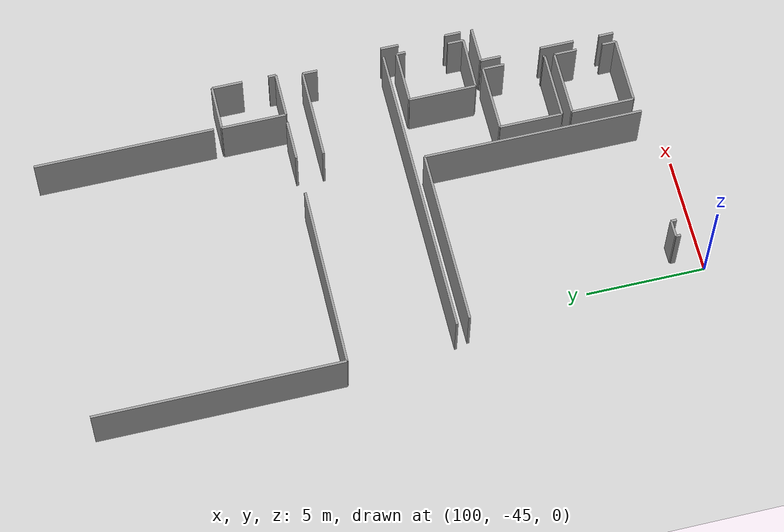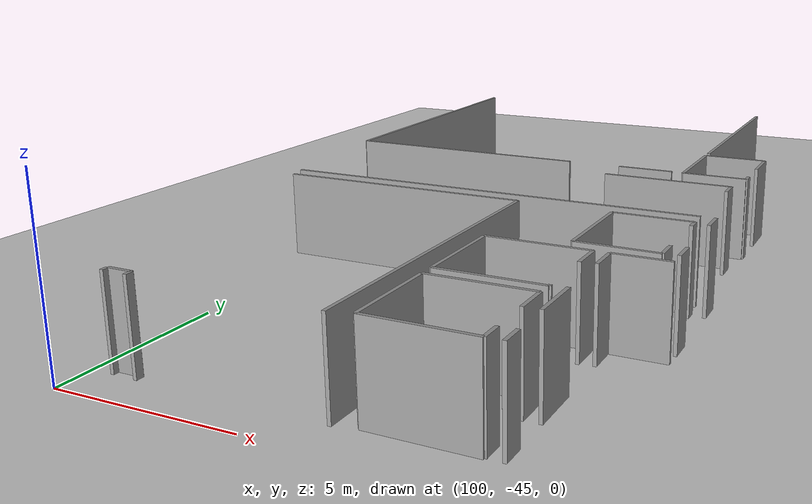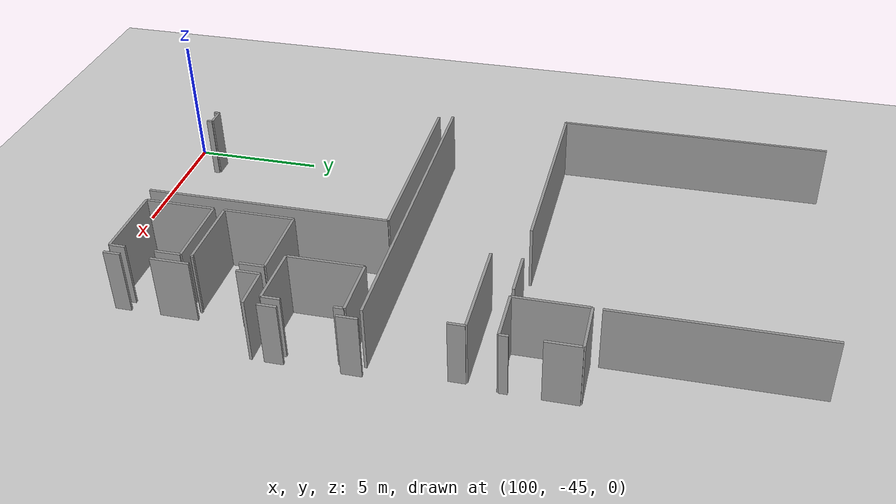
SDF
<sdf version="1.6">
 <world name="default">
  <model name="ground_plane">
   <static>1</static>
   <link name="link">
    <collision name="collision">
     <geometry><plane><normal>0 0 1</normal><size>100 100</size></plane></geometry>
     <surface><friction><ode><mu>100</mu><mu2>50</mu2></ode></friction></surface>
    </collision>
    <visual name="visual">
     <cast_shadows>0</cast_shadows>
     <geometry><plane><normal>0 0 1</normal><size>100 100</size></plane></geometry>
     <material>
      <script><uri>file://media/materials/scripts/gazebo.material</uri><name>Gazebo/Grey</name></script>
     </material>
    </visual>
   </link>
  </model>
  <model name="50015847">
   <static>1</static>
   <link name="Wall_886">
    <collision name="Wall_886_Collision">
     <geometry><box><size>2.71215742106 0.1 2.5</size></box></geometry>
     <pose>1.35607871053 0 1.25 0 0 0</pose>
    </collision>
    <visual name="Wall_886_Visual">
     <pose>1.35607871053 0 1.25 0 0 0</pose>
     <geometry><box><size>2.71215742106 0.1 2.5</size></box></geometry>
     <material>
      <script><uri>file://media/materials/scripts/gazebo.material</uri><name>Gazebo/Grey</name></script>
      <ambient>1 1 1 1</ambient>
     </material>
    </visual>
    <pose>242.059287131 -73.5165505669 0 0 0 1.57079632679</pose>
   </link>
   <link name="Wall_887">
    <collision name="Wall_887_Collision">
     <geometry><box><size>1.91945899222 0.1 2.5</size></box></geometry>
     <pose>0.95972949611 0 1.25 0 0 0</pose>
    </collision>
    <visual name="Wall_887_Visual">
     <pose>0.95972949611 0 1.25 0 0 0</pose>
     <geometry><box><size>1.91945899222 0.1 2.5</size></box></geometry>
     <material>
      <script><uri>file://media/materials/scripts/gazebo.material</uri><name>Gazebo/Grey</name></script>
      <ambient>1 1 1 1</ambient>
     </material>
    </visual>
    <pose>242.059287131 -70.8043931459 0 0 0 0.0</pose>
   </link>
   <link name="Wall_888">
    <collision name="Wall_888_Collision">
     <geometry><box><size>1.27574108913 0.1 2.5</size></box></geometry>
     <pose>0.637870544567 0 1.25 0 0 0</pose>
    </collision>
    <visual name="Wall_888_Visual">
     <pose>0.637870544567 0 1.25 0 0 0</pose>
     <geometry><box><size>1.27574108913 0.1 2.5</size></box></geometry>
     <material>
      <script><uri>file://media/materials/scripts/gazebo.material</uri><name>Gazebo/Grey</name></script>
      <ambient>1 1 1 1</ambient>
     </material>
    </visual>
    <pose>243.978746123 -70.8043931459 0 0 0 -1.57079632679</pose>
   </link>
   <link name="Wall_889">
    <collision name="Wall_889_Collision">
     <geometry><box><size>0.318045456857 0.1 2.5</size></box></geometry>
     <pose>0.159022728428 0 1.25 0 0 0</pose>
    </collision>
    <visual name="Wall_889_Visual">
     <pose>0.159022728428 0 1.25 0 0 0</pose>
     <geometry><box><size>0.318045456857 0.1 2.5</size></box></geometry>
     <material>
      <script><uri>file://media/materials/scripts/gazebo.material</uri><name>Gazebo/Grey</name></script>
      <ambient>1 1 1 1</ambient>
     </material>
    </visual>
    <pose>243.978746123 -73.1934204505 0 0 0 -1.57079632679</pose>
   </link>
   <link name="Wall_890">
    <collision name="Wall_890_Collision">
     <geometry><box><size>1.91946572686 0.1 2.5</size></box></geometry>
     <pose>0.959732863429 0 1.25 0 0 0</pose>
    </collision>
    <visual name="Wall_890_Visual">
     <pose>0.959732863429 0 1.25 0 0 0</pose>
     <geometry><box><size>1.91946572686 0.1 2.5</size></box></geometry>
     <material>
      <script><uri>file://media/materials/scripts/gazebo.material</uri><name>Gazebo/Grey</name></script>
      <ambient>1 1 1 1</ambient>
     </material>
    </visual>
    <pose>243.978746123 -73.5114659074 0 0 0 -3.13894365316</pose>
   </link>
   <link name="Wall_891">
    <collision name="Wall_891_Collision">
     <geometry><box><size>7.52961814207 0.1 2.5</size></box></geometry>
     <pose>3.76480907103 0 1.25 0 0 0</pose>
    </collision>
    <visual name="Wall_891_Visual">
     <pose>3.76480907103 0 1.25 0 0 0</pose>
     <geometry><box><size>7.52961814207 0.1 2.5</size></box></geometry>
     <material>
      <script><uri>file://media/materials/scripts/gazebo.material</uri><name>Gazebo/Grey</name></script>
      <ambient>1 1 1 1</ambient>
     </material>
    </visual>
    <pose>242.07199878 -70.4713479433 0 0 0 1.57079632679</pose>
   </link>
   <link name="Wall_935">
    <collision name="Wall_935_Collision">
     <geometry><box><size>10.3343163675 0.1 2.5</size></box></geometry>
     <pose>5.16715818376 0 1.25 0 0 0</pose>
    </collision>
    <visual name="Wall_935_Visual">
     <pose>5.16715818376 0 1.25 0 0 0</pose>
     <geometry><box><size>10.3343163675 0.1 2.5</size></box></geometry>
     <material>
      <script><uri>file://media/materials/scripts/gazebo.material</uri><name>Gazebo/Grey</name></script>
      <ambient>1 1 1 1</ambient>
     </material>
    </visual>
    <pose>230.682361316 -73.4453653328 0 0 0 1.57079632679</pose>
   </link>
   <link name="Wall_943">
    <collision name="Wall_943_Collision">
     <geometry><box><size>1.70336095998 0.1 2.5</size></box></geometry>
     <pose>0.851680479992 0 1.25 0 0 0</pose>
    </collision>
    <visual name="Wall_943_Visual">
     <pose>0.851680479992 0 1.25 0 0 0</pose>
     <geometry><box><size>1.70336095998 0.1 2.5</size></box></geometry>
     <material>
      <script><uri>file://media/materials/scripts/gazebo.material</uri><name>Gazebo/Grey</name></script>
      <ambient>1 1 1 1</ambient>
     </material>
    </visual>
    <pose>241.693191641 -73.4903645701 0 0 0 3.14159265359</pose>
   </link>
   <link name="Wall_944">
    <collision name="Wall_944_Collision">
     <geometry><box><size>7.6601718342 0.1 2.5</size></box></geometry>
     <pose>3.8300859171 0 1.25 0 0 0</pose>
    </collision>
    <visual name="Wall_944_Visual">
     <pose>3.8300859171 0 1.25 0 0 0</pose>
     <geometry><box><size>7.6601718342 0.1 2.5</size></box></geometry>
     <material>
      <script><uri>file://media/materials/scripts/gazebo.material</uri><name>Gazebo/Grey</name></script>
      <ambient>1 1 1 1</ambient>
     </material>
    </visual>
    <pose>238.342400976 -73.4903645701 0 0 0 3.13571817752</pose>
   </link>
   <link name="Wall_1495">
    <collision name="Wall_1495_Collision">
     <geometry><box><size>7.46428026644 0.1 2.5</size></box></geometry>
     <pose>3.73214013322 0 1.25 0 0 0</pose>
    </collision>
    <visual name="Wall_1495_Visual">
     <pose>3.73214013322 0 1.25 0 0 0</pose>
     <geometry><box><size>7.46428026644 0.1 2.5</size></box></geometry>
     <material>
      <script><uri>file://media/materials/scripts/gazebo.material</uri><name>Gazebo/Grey</name></script>
      <ambient>1 1 1 1</ambient>
     </material>
    </visual>
    <pose>231.3637057 -78.6263792139 0 0 0 0.0</pose>
   </link>
   <link name="Wall_1496">
    <collision name="Wall_1496_Collision">
     <geometry><box><size>9.22713174353 0.1 2.5</size></box></geometry>
     <pose>4.61356587176 0 1.25 0 0 0</pose>
    </collision>
    <visual name="Wall_1496_Visual">
     <pose>4.61356587176 0 1.25 0 0 0</pose>
     <geometry><box><size>9.22713174353 0.1 2.5</size></box></geometry>
     <material>
      <script><uri>file://media/materials/scripts/gazebo.material</uri><name>Gazebo/Grey</name></script>
      <ambient>1 1 1 1</ambient>
     </material>
    </visual>
    <pose>238.827985966 -78.6263792139 0 0 0 -1.57079632679</pose>
   </link>
   <link name="Wall_1497">
    <collision name="Wall_1497_Collision">
     <geometry><box><size>0.224487720547 0.1 2.5</size></box></geometry>
     <pose>0.112243860274 0 1.25 0 0 0</pose>
    </collision>
    <visual name="Wall_1497_Visual">
     <pose>0.112243860274 0 1.25 0 0 0</pose>
     <geometry><box><size>0.224487720547 0.1 2.5</size></box></geometry>
     <material>
      <script><uri>file://media/materials/scripts/gazebo.material</uri><name>Gazebo/Grey</name></script>
      <ambient>1 1 1 1</ambient>
     </material>
    </visual>
    <pose>233.651802512 -87.8535109574 0 0 0 1.57079632679</pose>
   </link>
   <link name="Wall_1498">
    <collision name="Wall_1498_Collision">
     <geometry><box><size>0.694056032949 0.1 2.5</size></box></geometry>
     <pose>0.347028016474 0 1.25 0 0 0</pose>
    </collision>
    <visual name="Wall_1498_Visual">
     <pose>0.347028016474 0 1.25 0 0 0</pose>
     <geometry><box><size>0.694056032949 0.1 2.5</size></box></geometry>
     <material>
      <script><uri>file://media/materials/scripts/gazebo.material</uri><name>Gazebo/Grey</name></script>
      <ambient>1 1 1 1</ambient>
     </material>
    </visual>
    <pose>233.651802512 -87.6290232369 0 0 0 3.14159265359</pose>
   </link>
   <link name="Wall_1499">
    <collision name="Wall_1499_Collision">
     <geometry><box><size>0.202115218386 0.1 2.5</size></box></geometry>
     <pose>0.101057609193 0 1.25 0 0 0</pose>
    </collision>
    <visual name="Wall_1499_Visual">
     <pose>0.101057609193 0 1.25 0 0 0</pose>
     <geometry><box><size>0.202115218386 0.1 2.5</size></box></geometry>
     <material>
      <script><uri>file://media/materials/scripts/gazebo.material</uri><name>Gazebo/Grey</name></script>
      <ambient>1 1 1 1</ambient>
     </material>
    </visual>
    <pose>232.957746479 -87.6290232369 0 0 0 -1.57079632679</pose>
   </link>
   <link name="Wall_1504">
    <collision name="Wall_1504_Collision">
     <geometry><box><size>0.688462907408 0.1 2.5</size></box></geometry>
     <pose>0.344231453704 0 1.25 0 0 0</pose>
    </collision>
    <visual name="Wall_1504_Visual">
     <pose>0.344231453704 0 1.25 0 0 0</pose>
     <geometry><box><size>0.688462907408 0.1 2.5</size></box></geometry>
     <material>
      <script><uri>file://media/materials/scripts/gazebo.material</uri><name>Gazebo/Grey</name></script>
      <ambient>1 1 1 1</ambient>
     </material>
    </visual>
    <pose>244.194844155 -81.4936187522 0 0 0 1.57079632679</pose>
   </link>
   <link name="Wall_1505">
    <collision name="Wall_1505_Collision">
     <geometry><box><size>0.748716123456 0.1 2.5</size></box></geometry>
     <pose>0.374358061728 0 1.25 0 0 0</pose>
    </collision>
    <visual name="Wall_1505_Visual">
     <pose>0.374358061728 0 1.25 0 0 0</pose>
     <geometry><box><size>0.748716123456 0.1 2.5</size></box></geometry>
     <material>
      <script><uri>file://media/materials/scripts/gazebo.material</uri><name>Gazebo/Grey</name></script>
      <ambient>1 1 1 1</ambient>
     </material>
    </visual>
    <pose>244.194844155 -78.8051049982 0 0 0 1.57079632679</pose>
   </link>
   <link name="Wall_1510">
    <collision name="Wall_1510_Collision">
     <geometry><box><size>2.8308842223 0.1 2.5</size></box></geometry>
     <pose>1.41544211115 0 1.25 0 0 0</pose>
    </collision>
    <visual name="Wall_1510_Visual">
     <pose>1.41544211115 0 1.25 0 0 0</pose>
     <geometry><box><size>2.8308842223 0.1 2.5</size></box></geometry>
     <material>
      <script><uri>file://media/materials/scripts/gazebo.material</uri><name>Gazebo/Grey</name></script>
      <ambient>1 1 1 1</ambient>
     </material>
    </visual>
    <pose>241.563532821 -81.4750597448 0 0 0 1.57079632679</pose>
   </link>
   <link name="Wall_1511">
    <collision name="Wall_1511_Collision">
     <geometry><box><size>2.23216555652 0.1 2.5</size></box></geometry>
     <pose>1.11608277826 0 1.25 0 0 0</pose>
    </collision>
    <visual name="Wall_1511_Visual">
     <pose>1.11608277826 0 1.25 0 0 0</pose>
     <geometry><box><size>2.23216555652 0.1 2.5</size></box></geometry>
     <material>
      <script><uri>file://media/materials/scripts/gazebo.material</uri><name>Gazebo/Grey</name></script>
      <ambient>1 1 1 1</ambient>
     </material>
    </visual>
    <pose>241.563532821 -78.6441755224 0 0 0 0.0</pose>
   </link>
   <link name="Wall_1512">
    <collision name="Wall_1512_Collision">
     <geometry><box><size>0.365587023949 0.1 2.5</size></box></geometry>
     <pose>0.182793511974 0 1.25 0 0 0</pose>
    </collision>
    <visual name="Wall_1512_Visual">
     <pose>0.182793511974 0 1.25 0 0 0</pose>
     <geometry><box><size>0.365587023949 0.1 2.5</size></box></geometry>
     <material>
      <script><uri>file://media/materials/scripts/gazebo.material</uri><name>Gazebo/Grey</name></script>
      <ambient>1 1 1 1</ambient>
     </material>
    </visual>
    <pose>243.795698378 -78.6441755224 0 0 0 -1.57079632679</pose>
   </link>
   <link name="Wall_1513">
    <collision name="Wall_1513_Collision">
     <geometry><box><size>0.673208928662 0.1 2.5</size></box></geometry>
     <pose>0.336604464331 0 1.25 0 0 0</pose>
    </collision>
    <visual name="Wall_1513_Visual">
     <pose>0.336604464331 0 1.25 0 0 0</pose>
     <geometry><box><size>0.673208928662 0.1 2.5</size></box></geometry>
     <material>
      <script><uri>file://media/materials/scripts/gazebo.material</uri><name>Gazebo/Grey</name></script>
      <ambient>1 1 1 1</ambient>
     </material>
    </visual>
    <pose>243.795698378 -80.8382061321 0 0 0 -1.57079632679</pose>
   </link>
   <link name="Wall_1514">
    <collision name="Wall_1514_Collision">
     <geometry><box><size>2.23246159669 0.1 2.5</size></box></geometry>
     <pose>1.11623079835 0 1.25 0 0 0</pose>
    </collision>
    <visual name="Wall_1514_Visual">
     <pose>1.11623079835 0 1.25 0 0 0</pose>
     <geometry><box><size>2.23246159669 0.1 2.5</size></box></geometry>
     <material>
      <script><uri>file://media/materials/scripts/gazebo.material</uri><name>Gazebo/Grey</name></script>
      <ambient>1 1 1 1</ambient>
     </material>
    </visual>
    <pose>243.795698378 -81.5114150608 0 0 0 3.12530707755</pose>
   </link>
   <link name="Wall_1515">
    <collision name="Wall_1515_Collision">
     <geometry><box><size>0.615752275385 0.1 2.5</size></box></geometry>
     <pose>0.307876137693 0 1.25 0 0 0</pose>
    </collision>
    <visual name="Wall_1515_Visual">
     <pose>0.307876137693 0 1.25 0 0 0</pose>
     <geometry><box><size>0.615752275385 0.1 2.5</size></box></geometry>
     <material>
      <script><uri>file://media/materials/scripts/gazebo.material</uri><name>Gazebo/Grey</name></script>
      <ambient>1 1 1 1</ambient>
     </material>
    </visual>
    <pose>242.68215793 -87.7091066253 0 0 0 1.57079632679</pose>
   </link>
   <link name="Wall_1516">
    <collision name="Wall_1516_Collision">
     <geometry><box><size>1.43590786597 0.1 2.5</size></box></geometry>
     <pose>0.717953932984 0 1.25 0 0 0</pose>
    </collision>
    <visual name="Wall_1516_Visual">
     <pose>0.717953932984 0 1.25 0 0 0</pose>
     <geometry><box><size>1.43590786597 0.1 2.5</size></box></geometry>
     <material>
      <script><uri>file://media/materials/scripts/gazebo.material</uri><name>Gazebo/Grey</name></script>
      <ambient>1 1 1 1</ambient>
     </material>
    </visual>
    <pose>242.68215793 -85.9808308334 0 0 0 1.57079632679</pose>
   </link>
   <link name="Wall_1517">
    <collision name="Wall_1517_Collision">
     <geometry><box><size>0.856002440637 0.1 2.5</size></box></geometry>
     <pose>0.428001220318 0 1.25 0 0 0</pose>
    </collision>
    <visual name="Wall_1517_Visual">
     <pose>0.428001220318 0 1.25 0 0 0</pose>
     <geometry><box><size>0.856002440637 0.1 2.5</size></box></geometry>
     <material>
      <script><uri>file://media/materials/scripts/gazebo.material</uri><name>Gazebo/Grey</name></script>
      <ambient>1 1 1 1</ambient>
     </material>
    </visual>
    <pose>242.68215793 -82.8329180861 0 0 0 1.57079632679</pose>
   </link>
   <link name="Wall_1518">
    <collision name="Wall_1518_Collision">
     <geometry><box><size>1.53810952357 0.1 2.5</size></box></geometry>
     <pose>0.769054761784 0 1.25 0 0 0</pose>
    </collision>
    <visual name="Wall_1518_Visual">
     <pose>0.769054761784 0 1.25 0 0 0</pose>
     <geometry><box><size>1.53810952357 0.1 2.5</size></box></geometry>
     <material>
      <script><uri>file://media/materials/scripts/gazebo.material</uri><name>Gazebo/Grey</name></script>
      <ambient>1 1 1 1</ambient>
     </material>
    </visual>
    <pose>242.68215793 -81.9769156455 0 0 0 0.0</pose>
   </link>
   <link name="Wall_1522">
    <collision name="Wall_1522_Collision">
     <geometry><box><size>2.64885340926 0.1 2.5</size></box></geometry>
     <pose>1.32442670463 0 1.25 0 0 0</pose>
    </collision>
    <visual name="Wall_1522_Visual">
     <pose>1.32442670463 0 1.25 0 0 0</pose>
     <geometry><box><size>2.64885340926 0.1 2.5</size></box></geometry>
     <material>
      <script><uri>file://media/materials/scripts/gazebo.material</uri><name>Gazebo/Grey</name></script>
      <ambient>1 1 1 1</ambient>
     </material>
    </visual>
    <pose>239.450856765 -84.6234809579 0 0 0 1.57079632679</pose>
   </link>
   <link name="Wall_1523">
    <collision name="Wall_1523_Collision">
     <geometry><box><size>2.82452839782 0.1 2.5</size></box></geometry>
     <pose>1.41226419891 0 1.25 0 0 0</pose>
    </collision>
    <visual name="Wall_1523_Visual">
     <pose>1.41226419891 0 1.25 0 0 0</pose>
     <geometry><box><size>2.82452839782 0.1 2.5</size></box></geometry>
     <material>
      <script><uri>file://media/materials/scripts/gazebo.material</uri><name>Gazebo/Grey</name></script>
      <ambient>1 1 1 1</ambient>
     </material>
    </visual>
    <pose>239.450856765 -81.9746275487 0 0 0 0.0</pose>
   </link>
   <link name="Wall_1524">
    <collision name="Wall_1524_Collision">
     <geometry><box><size>0.910662531144 0.1 2.5</size></box></geometry>
     <pose>0.455331265572 0 1.25 0 0 0</pose>
    </collision>
    <visual name="Wall_1524_Visual">
     <pose>0.455331265572 0 1.25 0 0 0</pose>
     <geometry><box><size>0.910662531144 0.1 2.5</size></box></geometry>
     <material>
      <script><uri>file://media/materials/scripts/gazebo.material</uri><name>Gazebo/Grey</name></script>
      <ambient>1 1 1 1</ambient>
     </material>
    </visual>
    <pose>242.275385163 -81.9746275487 0 0 0 -1.57079632679</pose>
   </link>
   <link name="Wall_1525">
    <collision name="Wall_1525_Collision">
     <geometry><box><size>0.0744902628769 0.1 2.5</size></box></geometry>
     <pose>0.0372451314385 0 1.25 0 0 0</pose>
    </collision>
    <visual name="Wall_1525_Visual">
     <pose>0.0372451314385 0 1.25 0 0 0</pose>
     <geometry><box><size>0.0744902628769 0.1 2.5</size></box></geometry>
     <material>
      <script><uri>file://media/materials/scripts/gazebo.material</uri><name>Gazebo/Grey</name></script>
      <ambient>1 1 1 1</ambient>
     </material>
    </visual>
    <pose>242.275385163 -84.5604311791 0 0 0 -1.57079632679</pose>
   </link>
   <link name="Wall_1526">
    <collision name="Wall_1526_Collision">
     <geometry><box><size>2.82455156703 0.1 2.5</size></box></geometry>
     <pose>1.41227578351 0 1.25 0 0 0</pose>
    </collision>
    <visual name="Wall_1526_Visual">
     <pose>1.41227578351 0 1.25 0 0 0</pose>
     <geometry><box><size>2.82455156703 0.1 2.5</size></box></geometry>
     <material>
      <script><uri>file://media/materials/scripts/gazebo.material</uri><name>Gazebo/Grey</name></script>
      <ambient>1 1 1 1</ambient>
     </material>
    </visual>
    <pose>242.275385163 -84.634921442 0 0 0 3.1375422707</pose>
   </link>
   <link name="Wall_1527">
    <collision name="Wall_1527_Collision">
     <geometry><box><size>2.63410789648 0.1 2.5</size></box></geometry>
     <pose>1.31705394824 0 1.25 0 0 0</pose>
    </collision>
    <visual name="Wall_1527_Visual">
     <pose>1.31705394824 0 1.25 0 0 0</pose>
     <geometry><box><size>2.63410789648 0.1 2.5</size></box></geometry>
     <material>
      <script><uri>file://media/materials/scripts/gazebo.material</uri><name>Gazebo/Grey</name></script>
      <ambient>1 1 1 1</ambient>
     </material>
    </visual>
    <pose>239.450856765 -87.6821579295 0 0 0 1.57079632679</pose>
   </link>
   <link name="Wall_1528">
    <collision name="Wall_1528_Collision">
     <geometry><box><size>2.80673208929 0.1 2.5</size></box></geometry>
     <pose>1.40336604464 0 1.25 0 0 0</pose>
    </collision>
    <visual name="Wall_1528_Visual">
     <pose>1.40336604464 0 1.25 0 0 0</pose>
     <geometry><box><size>2.80673208929 0.1 2.5</size></box></geometry>
     <material>
      <script><uri>file://media/materials/scripts/gazebo.material</uri><name>Gazebo/Grey</name></script>
      <ambient>1 1 1 1</ambient>
     </material>
    </visual>
    <pose>239.450856765 -85.0480500331 0 0 0 0.0</pose>
   </link>
   <link name="Wall_1529">
    <collision name="Wall_1529_Collision">
     <geometry><box><size>0.952610972695 0.1 2.5</size></box></geometry>
     <pose>0.476305486348 0 1.25 0 0 0</pose>
    </collision>
    <visual name="Wall_1529_Visual">
     <pose>0.476305486348 0 1.25 0 0 0</pose>
     <geometry><box><size>0.952610972695 0.1 2.5</size></box></geometry>
     <material>
      <script><uri>file://media/materials/scripts/gazebo.material</uri><name>Gazebo/Grey</name></script>
      <ambient>1 1 1 1</ambient>
     </material>
    </visual>
    <pose>242.257588854 -85.0480500331 0 0 0 -1.57079632679</pose>
   </link>
   <link name="Wall_1530">
    <collision name="Wall_1530_Collision">
     <geometry><box><size>0.579142726394 0.1 2.5</size></box></geometry>
     <pose>0.289571363197 0 1.25 0 0 0</pose>
    </collision>
    <visual name="Wall_1530_Visual">
     <pose>0.289571363197 0 1.25 0 0 0</pose>
     <geometry><box><size>0.579142726394 0.1 2.5</size></box></geometry>
     <material>
      <script><uri>file://media/materials/scripts/gazebo.material</uri><name>Gazebo/Grey</name></script>
      <ambient>1 1 1 1</ambient>
     </material>
    </visual>
    <pose>242.257588854 -87.1208115117 0 0 0 -1.57079632679</pose>
   </link>
   <link name="Wall_1531">
    <collision name="Wall_1531_Collision">
     <geometry><box><size>2.80678850818 0.1 2.5</size></box></geometry>
     <pose>1.40339425409 0 1.25 0 0 0</pose>
    </collision>
    <visual name="Wall_1531_Visual">
     <pose>1.40339425409 0 1.25 0 0 0</pose>
     <geometry><box><size>2.80678850818 0.1 2.5</size></box></geometry>
     <material>
      <script><uri>file://media/materials/scripts/gazebo.material</uri><name>Gazebo/Grey</name></script>
      <ambient>1 1 1 1</ambient>
     </material>
    </visual>
    <pose>242.257588854 -87.6999542381 0 0 0 3.13525215885</pose>
   </link>
   <link name="Wall_1703">
    <collision name="Wall_1703_Collision">
     <geometry><box><size>3.8516296334 0.1 2.5</size></box></geometry>
     <pose>1.9258148167 0 1.25 0 0 0</pose>
    </collision>
    <visual name="Wall_1703_Visual">
     <pose>1.9258148167 0 1.25 0 0 0</pose>
     <geometry><box><size>3.8516296334 0.1 2.5</size></box></geometry>
     <material>
      <script><uri>file://media/materials/scripts/gazebo.material</uri><name>Gazebo/Grey</name></script>
      <ambient>1 1 1 1</ambient>
     </material>
    </visual>
    <pose>239.936441755 -74.6194132303 0 0 0 0.0</pose>
   </link>
   <link name="Wall_1704">
    <collision name="Wall_1704_Collision">
     <geometry><box><size>0.61727767326 0.1 2.5</size></box></geometry>
     <pose>0.30863883663 0 1.25 0 0 0</pose>
    </collision>
    <visual name="Wall_1704_Visual">
     <pose>0.30863883663 0 1.25 0 0 0</pose>
     <geometry><box><size>0.61727767326 0.1 2.5</size></box></geometry>
     <material>
      <script><uri>file://media/materials/scripts/gazebo.material</uri><name>Gazebo/Grey</name></script>
      <ambient>1 1 1 1</ambient>
     </material>
    </visual>
    <pose>243.788071389 -74.6194132303 0 0 0 -1.57079632679</pose>
   </link>
   <link name="Wall_1705">
    <collision name="Wall_1705_Collision">
     <geometry><box><size>12.566736157 0.1 2.5</size></box></geometry>
     <pose>6.28336807851 0 1.25 0 0 0</pose>
    </collision>
    <visual name="Wall_1705_Visual">
     <pose>6.28336807851 0 1.25 0 0 0</pose>
     <geometry><box><size>12.566736157 0.1 2.5</size></box></geometry>
     <material>
      <script><uri>file://media/materials/scripts/gazebo.material</uri><name>Gazebo/Grey</name></script>
      <ambient>1 1 1 1</ambient>
     </material>
    </visual>
    <pose>243.788071389 -78.0716428535 0 0 0 3.14159265359</pose>
   </link>
   <pose>-132.35 43.9162226064 0 0 0 0</pose>
  </model>
 </world>
</sdf>
